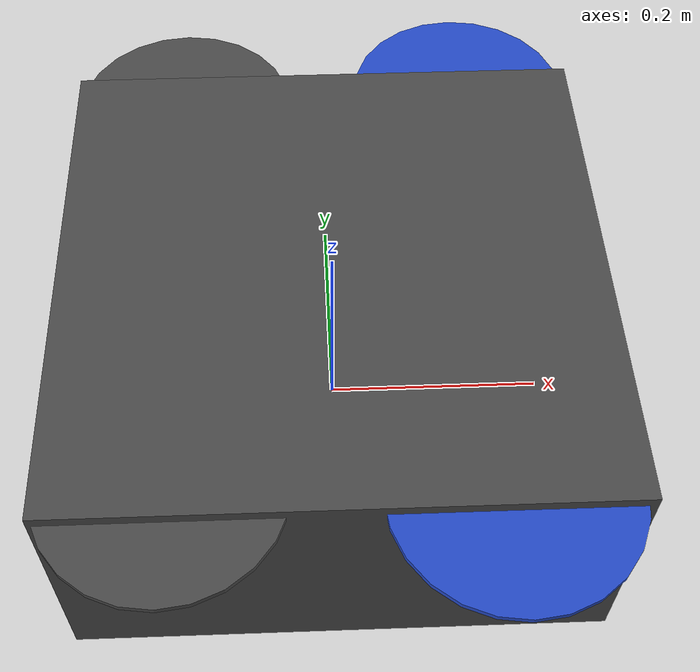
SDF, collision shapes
<?xml version='1.0'?>
<sdf version='1.5'>
  <model name='iris'>
    <pose>0 0 0.165 0 0 0</pose>
    <link name='base_link'>

      <visual name='camera_visual'>
        <pose>0.2 0.0 0.0 0 0 0</pose>
        <transparency>1.0</transparency>
        <geometry>
          <box>
            <size>0.000001 0.000001 0.000001</size>
          </box>
        </geometry>
      </visual>

      <visual name='timer_visual'>
        <pose>2.2 0.3 0.1 0 0 0</pose>
        <geometry>
          <box>
            <size>.00001 .00001 .00001</size>
          </box>
        </geometry>
        <plugin filename="libDroneTimerPlugin.so" name="timer"/>
      </visual>
      <visual name='timer_visual_background'>
        <pose>2.3 0.3 0.11 0 0 0</pose>
        <geometry>
          <box>
            <size>0.01 0.2 0.04</size>
          </box>
        </geometry>
      </visual>

      <velocity_decay>
        <linear>0.001</linear>
        <angular>0.00</angular>
      </velocity_decay>
      <inertial>
        <pose>0 0 0.023 0 0 0</pose>
        <mass>1.5</mass>
        <inertia>
          <ixx>0.0347563</ixx>
          <ixy>0</ixy>
          <ixz>0</ixz>
          <iyy>0.0458929</iyy>
          <iyz>0</iyz>
          <izz>0.0977</izz>
        </inertia>
      </inertial>
      <collision name='base_link_collision'>
        <pose>0 0 -0.08 0 0 0</pose>
        <geometry>
          <box>
            <size>0.47 0.47 0.23</size>
          </box>
        </geometry>
        <surface>
          <contact>
            <ode>
              <max_vel>0.01</max_vel>
              <min_depth>0.001</min_depth>
            </ode>
          </contact>
          <friction>
            <ode>
              <mu>1.0</mu>
              <mu2>1.0</mu2>
            </ode>
          </friction>
        </surface>
      </collision>
      <visual name='base_link_visual'>
        <geometry>
          <mesh>
            <uri>model://iris/meshes/iris.dae</uri>
          </mesh>
        </geometry>
        <material>
          <script>
            <name>Gazebo/DarkGrey</name>
          </script>
        </material>
      </visual>

      <visual name='front_left_leg_visual'>
        <pose>0.123 0.22 -0.11 0 0 0</pose>
        <geometry>
          <cylinder>
            <radius>0.005</radius>
            <length>0.17</length>
          </cylinder>
        </geometry>
        <material>
          <script>
            <name>Gazebo/FlatBlack</name>
            <uri>file://media/materials/scripts/gazebo.material</uri>
          </script>
        </material>
      </visual>

      <visual name='front_right_leg_visual'>
        <pose>0.123 -0.22 -0.11 0 0 0</pose>
        <geometry>
          <cylinder>
            <radius>0.005</radius>
            <length>0.17</length>
          </cylinder>
        </geometry>
        <material>
          <script>
            <name>Gazebo/FlatBlack</name>
            <uri>file://media/materials/scripts/gazebo.material</uri>
          </script>
        </material>
      </visual>

      <visual name='rear_left_leg_visual'>
        <pose>-0.140 0.21 -0.11 0 0 0</pose>
        <geometry>
          <cylinder>
            <radius>0.005</radius>
            <length>0.17</length>
          </cylinder>
        </geometry>
        <material>
          <script>
            <name>Gazebo/FlatBlack</name>
            <uri>file://media/materials/scripts/gazebo.material</uri>
          </script>
        </material>
      </visual>

      <visual name='rear_right_leg_visual'>
        <pose>-0.140 -0.21 -0.11 0 0 0</pose>
        <geometry>
          <cylinder>
            <radius>0.005</radius>
            <length>0.17</length>
          </cylinder>
        </geometry>
        <material>
          <script>
            <name>Gazebo/FlatBlack</name>
            <uri>file://media/materials/scripts/gazebo.material</uri>
          </script>
        </material>
      </visual>
    </link>
    <link name='iris/ground_truth/odometry_sensorgt_link'>
      <pose>0 0 0 0 -0 0</pose>
      <inertial>
        <pose>0 0 0 0 -0 0</pose>
        <mass>0.01</mass>
        <inertia>
          <ixx>0.0002</ixx>
          <ixy>0</ixy>
          <ixz>0</ixz>
          <iyy>0.0002</iyy>
          <iyz>0</iyz>
          <izz>0.0002</izz>
        </inertia>
      </inertial>
    </link>
    <joint name='iris/ground_truth/odometry_sensorgt_joint' type='revolute'>
      <child>iris/ground_truth/odometry_sensorgt_link</child>
      <parent>base_link</parent>
      <axis>
        <xyz>0 0 1</xyz>
        <limit>
          <lower>0</lower>
          <upper>0</upper>
          <effort>0</effort>
          <velocity>0</velocity>
        </limit>
        <dynamics>
          <spring_reference>0</spring_reference>
          <spring_stiffness>0</spring_stiffness>
        </dynamics>
        <use_parent_model_frame>1</use_parent_model_frame>
      </axis>
    </joint>
    <link name='iris/imu_link'>
      <pose>0 0 0 0 0 0</pose>
      <inertial>
        <pose>0 0 0 0 0 0</pose>
        <mass>0.015</mass>
        <inertia>
          <ixx>0.0008</ixx>
          <ixy>0</ixy>
          <ixz>0</ixz>
          <iyy>0.0008</iyy>
          <iyz>0</iyz>
          <izz>0.0008</izz>
        </inertia>
      </inertial>
    </link>
    <joint name='iris/imu_joint' type='revolute'>
      <child>iris/imu_link</child>
      <parent>base_link</parent>
      <axis>
        <xyz>0 0 1</xyz>
        <limit>
          <lower>0</lower>
          <upper>0</upper>
          <effort>0</effort>
          <velocity>0</velocity>
        </limit>
        <dynamics>
          <spring_reference>0</spring_reference>
          <spring_stiffness>0</spring_stiffness>
        </dynamics>
        <use_parent_model_frame>1</use_parent_model_frame>
      </axis>
    </joint>
    <link name='rotor_0'>
      <pose>0.13 -0.22 0.023 0 -0 0</pose>
      <inertial>
        <pose>0 0 0 0 -0 0</pose>
        <mass>0.005</mass>
        <inertia>
          <ixx>0.00001</ixx>
          <ixy>0</ixy>
          <ixz>0</ixz>
          <iyy>0.000166704</iyy>
          <iyz>0</iyz>
          <izz>0.000167604</izz>
        </inertia>
      </inertial>
      <collision name='rotor_0_collision'>
        <pose>0 0 0 0 -0 0</pose>
        <geometry>
          <cylinder>
            <length>0.005</length>
            <radius>0.1</radius>
          </cylinder>
        </geometry>
        <surface>
          <contact>
            <ode/>
          </contact>
          <friction>
            <ode/>
          </friction>
        </surface>
      </collision>
      <visual name='rotor_0_visual'>
        <pose>0 0 0 0 -0 0</pose>
        <geometry>
          <mesh>
            <scale>1 1 1</scale>
            <uri>model://iris/meshes/iris_prop_ccw.dae</uri>
          </mesh>
        </geometry>
        <material>
          <script>
            <name>Gazebo/Blue</name>
            <uri>__default__</uri>
          </script>
        </material>
      </visual>
      <gravity>1</gravity>
      <velocity_decay/>
      <self_collide>0</self_collide>
    </link>
    <joint name='rotor_0_joint' type='revolute'>
      <child>rotor_0</child>
      <parent>base_link</parent>
      <axis>
        <xyz>0 0 1</xyz>
        <limit>
          <lower>-1e+16</lower>
          <upper>1e+16</upper>
        </limit>
        <dynamics>
          <damping>0.000</damping>
        </dynamics>
        <use_parent_model_frame>1</use_parent_model_frame>
      </axis>
      <physics>
        <ode>
          <implicit_spring_damper>1</implicit_spring_damper>
        </ode>
      </physics>
    </joint>
    <link name='rotor_1'>
      <pose>-0.134 0.206 0.023 0 -0 0</pose>
      <inertial>
        <pose>0 0 0 0 -0 0</pose>
        <mass>0.005</mass>
        <inertia>
          <ixx>0.00001</ixx>
          <ixy>0</ixy>
          <ixz>0</ixz>
          <iyy>0.000166704</iyy>
          <iyz>0</iyz>
          <izz>0.000167604</izz>
        </inertia>
      </inertial>
      <collision name='rotor_1_collision'>
        <pose>0 0 0 0 -0 0</pose>
        <geometry>
          <cylinder>
            <length>0.005</length>
            <radius>0.1</radius>
          </cylinder>
        </geometry>
        <surface>
          <contact>
            <ode/>
          </contact>
          <friction>
            <ode/>
          </friction>
        </surface>
      </collision>
      <visual name='rotor_1_visual'>
        <pose>0 0 0 0 -0 0</pose>
        <geometry>
          <mesh>
            <scale>1 1 1</scale>
            <uri>model://iris/meshes/iris_prop_ccw.dae</uri>
          </mesh>
        </geometry>
        <material>
          <script>
            <name>Gazebo/DarkGrey</name>
            <uri>__default__</uri>
          </script>
        </material>
      </visual>
      <gravity>1</gravity>
      <velocity_decay/>
      <self_collide>0</self_collide>
    </link>
    <joint name='rotor_1_joint' type='revolute'>
      <child>rotor_1</child>
      <parent>base_link</parent>
      <axis>
        <xyz>0 0 1</xyz>
        <limit>
          <lower>-1e+16</lower>
          <upper>1e+16</upper>
        </limit>
        <dynamics>
          <damping>0.000</damping>
        </dynamics>
        <use_parent_model_frame>1</use_parent_model_frame>
      </axis>
      <physics>
        <ode>
          <implicit_spring_damper>1</implicit_spring_damper>
        </ode>
      </physics>
    </joint>
    <link name='rotor_2'>
      <pose>0.13 0.22 0.023 0 -0 0</pose>
      <inertial>
        <pose>0 0 0 0 -0 0</pose>
        <mass>0.005</mass>
        <inertia>
          <ixx>0.00001</ixx>
          <ixy>0</ixy>
          <ixz>0</ixz>
          <iyy>0.000166704</iyy>
          <iyz>0</iyz>
          <izz>0.000167604</izz>
        </inertia>
      </inertial>
      <collision name='rotor_2_collision'>
        <pose>0 0 0 0 -0 0</pose>
        <geometry>
          <cylinder>
            <length>0.005</length>
            <radius>0.1</radius>
          </cylinder>
        </geometry>
        <surface>
          <contact>
            <ode/>
          </contact>
          <friction>
            <ode/>
          </friction>
        </surface>
      </collision>
      <visual name='rotor_2_visual'>
        <pose>0 0 0 0 -0 0</pose>
        <geometry>
          <mesh>
            <scale>1 1 1</scale>
            <uri>model://iris/meshes/iris_prop_cw.dae</uri>
          </mesh>
        </geometry>
        <material>
          <script>
            <name>Gazebo/Blue</name>
            <uri>__default__</uri>
          </script>
        </material>
      </visual>
      <gravity>1</gravity>
      <velocity_decay/>
      <self_collide>0</self_collide>
    </link>
    <joint name='rotor_2_joint' type='revolute'>
      <child>rotor_2</child>
      <parent>base_link</parent>
      <axis>
        <xyz>0 0 1</xyz>
        <limit>
          <lower>-1e+16</lower>
          <upper>1e+16</upper>
        </limit>
        <dynamics>
          <damping>0.000</damping>
        </dynamics>
        <use_parent_model_frame>1</use_parent_model_frame>
      </axis>
      <physics>
        <ode>
          <implicit_spring_damper>1</implicit_spring_damper>
        </ode>
      </physics>
    </joint>
    <link name='rotor_3'>
      <pose>-0.137 -0.203 0.023 0 -0 0</pose>
      <inertial>
        <pose>0 0 0 0 -0 0</pose>
        <mass>0.005</mass>
        <inertia>
          <ixx>0.00001</ixx>
          <ixy>0</ixy>
          <ixz>0</ixz>
          <iyy>0.000166704</iyy>
          <iyz>0</iyz>
          <izz>0.000167604</izz>
        </inertia>
      </inertial>
      <collision name='rotor_3_collision'>
        <pose>0 0 0 0 -0 0</pose>
        <geometry>
          <cylinder>
            <length>0.005</length>
            <radius>0.1</radius>
          </cylinder>
        </geometry>
        <surface>
          <contact>
            <ode/>
          </contact>
          <friction>
            <ode/>
          </friction>
        </surface>
      </collision>
      <visual name='rotor_3_visual'>
        <pose>0 0 0 0 -0 0</pose>
        <geometry>
          <mesh>
            <scale>1 1 1</scale>
            <uri>model://iris/meshes/iris_prop_cw.dae</uri>
          </mesh>
        </geometry>
        <material>
          <script>
            <name>Gazebo/DarkGrey</name>
            <uri>__default__</uri>
          </script>
        </material>
      </visual>
      <gravity>1</gravity>
      <velocity_decay/>
      <self_collide>0</self_collide>
    </link>
    <joint name='rotor_3_joint' type='revolute'>
      <child>rotor_3</child>
      <parent>base_link</parent>
      <axis>
        <xyz>0 0 1</xyz>
        <limit>
          <lower>-1e+16</lower>
          <upper>1e+16</upper>
        </limit>
        <dynamics>
          <damping>0.000</damping>
        </dynamics>
        <use_parent_model_frame>1</use_parent_model_frame>
      </axis>
      <physics>
        <ode>
          <implicit_spring_damper>1</implicit_spring_damper>
        </ode>
      </physics>
    </joint>

    <static>0</static>

  </model>
</sdf>
